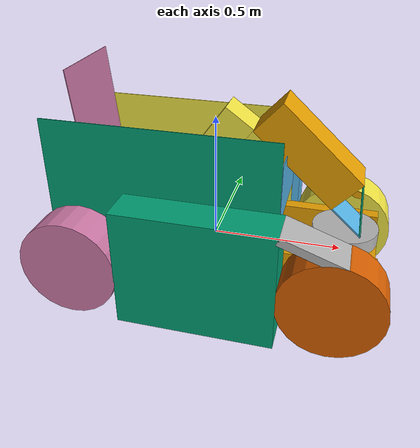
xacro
<?xml version="1.0"?>
<robot name="excavator" xmlns:xacro="http://www.ros.org/wiki/xacro">
  <!-- Top-level robot description -->
  <xacro:include filename="model_constants.xacro"/>
  <xacro:include filename="model_base.xacro"/>
  <xacro:include filename="model_arm.xacro"/>
  <gazebo>
    <plugin name="gazebo_ros_control" filename="libgazebo_ros_control.so">
      <robotNamespace>/</robotNamespace>
    </plugin>
  </gazebo>
</robot>

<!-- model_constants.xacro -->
<!--NOTE must match the constants in the control code header in utilities-->
<robot name="excavator" xmlns:xacro="http://www.ros.org/wiki/xacro">
  <!-- Shared model level constants -->
  <!-- Inches to meters conversion -->
  <xacro:property name="itom" value="0.0254" />
  <!-- Degrees to radians conversion -->
  <xacro:property name="dtor" value="${pi/180}" />
  <xacro:property name="sqrt2" value="1.41421" />

  <!-- Drivebase parameters -->
  <xacro:property name="base_mass" value="${25.0}"/>

  <xacro:property name="base_length" value="${50*itom}" />

  <xacro:property name="tube_width" value="${2*itom}" />
  <xacro:property name="drivebase_beam_width" value="${11.5*itom}" />
  <xacro:property name="drivebase_front_beam_height" value="${4*itom}" />
  <xacro:property name="drivebase_total_height" value="${6*itom}" />

  <!-- Drivetrain parameters -->
  <xacro:property name="tred_left_mass" value="${30.0}" />
  <xacro:property name="tred_right_mass" value="${30.0}" />
  <xacro:property name="tread_end_radius" value="${(15.5/2)*itom}" />
  <xacro:property name="tread_mid_height" value="${19*itom}" />
  <xacro:property name="tread_mid_length" value="${24*itom}" />
  <xacro:property name="tread_width" value="${6*itom}" />
  <xacro:property name="tread_spacing" value="${16*itom}" />
  <xacro:property name="intertread_length" value="${39*itom}" />
  <xacro:property name="tread_slope_length" value="${11*itom}" />

  <!-- Bin parameters -->
  <!-- Length of top of bin, length of bottom is 13.86 -->
  <!-- Using the bigger size as a box instead of making complex angled shape -->
  <xacro:property name="bin_mass" value="${10.0}" />
  <xacro:property name="bin_length" value="${36*itom}" />
  <xacro:property name="bin_width" value="${13.5*itom}" />
  <xacro:property name="bin_height" value="${16*itom}" />
  <xacro:property name="bin_back_height" value="${9*itom}" />
  <xacro:property name="bin_back_offset" value="${6.5*itom}" />

  <!-- Turntable parameters -->
  <xacro:property name="turntable_mass" value="${25.0}"/>
  <xacro:property name="turntable_radius" value="${4.92*itom}" />
  <!-- 1" in model plus undefined height for mounting and extra components -->
  <!-- Rounded to 2" for now -->
  <xacro:property name="turntable_height" value="${2.25*itom}" />

  <!-- Lower arm parameters -->
  <xacro:property name="lower_arm_mass" value="${28.0}"/>
  <xacro:property name="lower_arm_length" value="${22*itom}" />
  <xacro:property name="lower_arm_primary_length" value="${16*itom}" />
  <xacro:property name="lower_arm_width" value="${6*itom}" />
  <xacro:property name="lower_arm_height" value="${6*itom}" />
  <xacro:property name="lower_arm_min" value="0.104" />
  <xacro:property name="lower_arm_max" value="1.55" />

  <!-- Upper arm parameters -->
  <xacro:property name="upper_arm_mass" value="${10.0}"/>
  <xacro:property name="upper_arm_length" value="${20*itom}" />
  <xacro:property name="upper_arm_width" value="${4.75*itom}" />
  <xacro:property name="upper_arm_height" value="${5*itom}" />
  <xacro:property name="upper_arm_min" value="0.98"/>
  <xacro:property name="upper_arm_max" value="2.4"/>

  <!-- Scoop parameters -->
  <xacro:property name="scoop_mass" value="${5.0}"/>
  <xacro:property name="scoop_width" value="${8.5*itom}" />
  <xacro:property name="scoop_length" value="${12*itom}" />
  <xacro:property name="scoop_diameter" value="${12.5*itom}" />
  <xacro:property name="scoop_min" value="-1.16614" />
  <xacro:property name="scoop_max" value="1.62" />
</robot>

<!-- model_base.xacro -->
<robot xmlns:xacro="http://www.ros.org/wiki/xacro" name="excavator">
  <!-- CHASSIS -->
  <link name="base_link" >
    <visual>
      <geometry>
        <box size="${base_length} ${tube_width} ${drivebase_total_height}"/>
      </geometry>
      <origin xyz="0 ${drivebase_beam_width / 2 + tube_width / 2} 0" />
    </visual>

    <visual>
      <geometry>
        <box size="${base_length} ${tube_width} ${drivebase_total_height}"/>
      </geometry>
      <origin xyz="0 ${-drivebase_beam_width / 2 - tube_width / 2} 0" />
    </visual>

    <!-- Front beam -->
    <visual>
      <geometry>
        <box size="${tube_width} ${drivebase_beam_width} ${drivebase_front_beam_height}"/>
      </geometry>
      <origin xyz="${base_length / 2 - tube_width / 2} 0 ${drivebase_front_beam_height / 2 - drivebase_total_height / 2}" />
    </visual>

    <!-- Rear beam -->
    <visual>
      <geometry>
        <box size="${tube_width} ${drivebase_beam_width} ${drivebase_total_height}"/>
      </geometry>
      <origin xyz="${tube_width / 2 - base_length / 2} 0 0" />
    </visual>

    <collision>
      <geometry>
        <box size="${base_length} ${tube_width} ${drivebase_total_height}"/>
      </geometry>
      <origin xyz="0 ${drivebase_beam_width / 2 + tube_width / 2} 0" />
    </collision>

    <collision>
      <geometry>
        <box size="${base_length} ${tube_width} ${drivebase_total_height}"/>
      </geometry>
      <origin xyz="0 ${-drivebase_beam_width / 2 - tube_width / 2} 0" />
    </collision>

    <!-- Front beam -->
    <collision>
      <geometry>
        <box size="${tube_width} ${drivebase_beam_width} ${drivebase_front_beam_height}"/>
      </geometry>
      <origin xyz="${base_length / 2 - tube_width / 2} 0 ${drivebase_front_beam_height / 2 - drivebase_total_height / 2}" />
    </collision>

    <!-- Rear beam -->
    <collision>
      <geometry>
        <box size="${tube_width} ${drivebase_beam_width} ${drivebase_total_height}"/>
      </geometry>
      <origin xyz="${tube_width / 2 - base_length / 2} 0 0" />
    </collision>

    <!-- test -->
    <inertial>
      <mass value="1.0" />
      <inertia ixx="1.0" ixy="0.0" ixz="0.0" iyy="1.0" iyz="0.0" izz="1.0"/>
    </inertial>

  </link>

  <!-- DRIVEBASE -->
  <!-- A general tread huge block: may be refined later for slightly better operational motion -->
  <link name="tread_left_link">
    <visual>
      <geometry>
        <box size="${tread_mid_length} ${tread_width} ${tread_mid_height}"/>
      </geometry>
    </visual>
    <collision>
      <geometry>
        <box size="${tread_mid_length} ${tread_width} ${tread_mid_height}"/>
      </geometry>
    </collision>
    <!-- test -->
    <inertial>
      <mass value="1.0" />
      <inertia ixx="1.0" ixy="0.0" ixz="0.0" iyy="1.0" iyz="0.0" izz="1.0"/>
    </inertial>
  </link>

  <joint name="left_tread_joint" type="fixed">
    <parent link="base_link" />
    <child link="tread_left_link" />
    <origin xyz="0 ${tread_spacing / 2 + tread_width / 2} 0" />
  </joint>

  <link name="tread_right_link">
    <visual>
      <geometry>
        <box size="${tread_mid_length} ${tread_width} ${tread_mid_height}"/>
      </geometry>
    </visual>
    <collision>
      <geometry>
        <box size="${tread_mid_length} ${tread_width} ${tread_mid_height}"/>
      </geometry>
    </collision>
    <!-- test -->
    <inertial>
      <mass value="1.0" />
      <inertia ixx="1.0" ixy="0.0" ixz="0.0" iyy="1.0" iyz="0.0" izz="1.0"/>
    </inertial>
  </link>

  <joint name="right_tread_joint" type="fixed">
    <parent link="base_link" />
    <child link="tread_right_link" />
    <origin xyz="0 ${-tread_spacing / 2 - tread_width / 2} 0" />
  </joint>

  <link name="tread_left_front_link">
    <visual>
      <geometry>
        <cylinder radius="${tread_end_radius}" length="${tread_width}" />
      </geometry>
      <origin rpy="${pi/2} 0.0 0.0" />
    </visual>
    <collision>
      <geometry>
        <cylinder radius="${tread_end_radius}" length="${tread_width}" />
      </geometry>
      <origin rpy="${pi/2} 0.0 0.0" />
    </collision>
    <!-- test -->
    <inertial>
      <mass value="1.0" />
      <inertia ixx="1.0" ixy="0.0" ixz="0.0" iyy="1.0" iyz="0.0" izz="1.0"/>
    </inertial>
  </link>

  <joint name="tread_left_front_joint" type="fixed">
    <parent link="tread_left_link" />
    <child link="tread_left_front_link" />
    <origin xyz="${intertread_length / 2} 0 ${-1.38*itom}" />
  </joint>

  <link name="tread_left_rear_link">
    <visual>
      <geometry>
        <cylinder radius="${tread_end_radius}" length="${tread_width}" />
      </geometry>
      <origin rpy="${pi/2} 0.0 0.0" />
    </visual>
    <collision>
      <geometry>
        <cylinder radius="${tread_end_radius}" length="${tread_width}" />
      </geometry>
      <origin rpy="${pi/2} 0.0 0.0" />
    </collision>
    <!-- test -->
    <inertial>
      <mass value="1.0" />
      <inertia ixx="1.0" ixy="0.0" ixz="0.0" iyy="1.0" iyz="0.0" izz="1.0"/>
    </inertial>
  </link>

  <joint name="tread_left_rear_joint" type="fixed">
    <parent link="tread_left_link" />
    <child link="tread_left_rear_link" />
    <origin xyz="${-intertread_length / 2} 0 ${-1.38*itom}" />
  </joint>

  <link name="tread_right_front_link">
    <visual>
      <geometry>
        <cylinder radius="${tread_end_radius}" length="${tread_width}" />
      </geometry>
      <origin rpy="${pi/2} 0.0 0.0" />
    </visual>
    <collision>
      <geometry>
        <cylinder radius="${tread_end_radius}" length="${tread_width}" />
      </geometry>
      <origin rpy="${pi/2} 0.0 0.0" />
    </collision>
    <!-- test -->
    <inertial>
      <mass value="1.0" />
      <inertia ixx="1.0" ixy="0.0" ixz="0.0" iyy="1.0" iyz="0.0" izz="1.0"/>
    </inertial>
  </link>

  <joint name="tread_right_front_joint" type="fixed">
    <parent link="tread_right_link" />
    <child link="tread_right_front_link" />
    <origin xyz="${intertread_length / 2} 0 ${-1.38*itom}" />
  </joint>

  <link name="tread_right_rear_link">
    <visual>
      <geometry>
        <cylinder radius="${tread_end_radius}" length="${tread_width}" />
      </geometry>
      <origin rpy="${pi/2} 0.0 0.0" />
    </visual>
    <collision>
      <geometry>
        <cylinder radius="${tread_end_radius}" length="${tread_width}" />
      </geometry>
      <origin rpy="${pi/2} 0.0 0.0" />
    </collision>
    <!-- test -->
    <inertial>
      <mass value="1.0" />
      <inertia ixx="1.0" ixy="0.0" ixz="0.0" iyy="1.0" iyz="0.0" izz="1.0"/>
    </inertial>
  </link>

  <joint name="tread_right_rear_joint" type="fixed">
    <parent link="tread_right_link" />
    <child link="tread_right_rear_link" />
    <origin xyz="${-intertread_length / 2} 0 ${-1.38*itom}" />
  </joint>

  <link name="front_right_slope_link">
    <visual>
      <geometry>
        <box size="${tread_slope_length} ${tread_width} ${1.25*itom}"/>
      </geometry>
      <origin xyz="${tread_slope_length/2} 0.0 ${-1.25/2*itom}" />
    </visual>
    <collision>
      <geometry>
        <box size="${tread_slope_length} ${tread_width} ${1.25*itom}"/>
      </geometry>
      <origin xyz="${tread_slope_length/2} 0.0 ${-1.25/2*itom}" />
    </collision>
    <!-- test -->
    <inertial>
      <mass value="1.0" />
      <inertia ixx="1.0" ixy="0.0" ixz="0.0" iyy="1.0" iyz="0.0" izz="1.0"/>
    </inertial>
  </link>

  <joint name="front_right_slope_joint" type="fixed">
    <parent link="tread_right_link" />
    <child link="front_right_slope_link" />
    <origin xyz="${tread_mid_length/2} 0.0 ${tread_mid_height/2}" rpy="0.0 ${(180-160)*dtor} 0.0" />
  </joint>

  <link name="front_left_slope_link">
    <visual>
      <geometry>
        <box size="${tread_slope_length} ${tread_width} ${1.25*itom}"/>
      </geometry>
      <origin xyz="${tread_slope_length/2} 0.0 ${-1.25/2*itom}" />
    </visual>
    <collision>
      <geometry>
        <box size="${tread_slope_length} ${tread_width} ${1.25*itom}"/>
      </geometry>
      <origin xyz="${tread_slope_length/2} 0.0 ${-1.25/2*itom}" />
    </collision>
    <!-- test -->
    <inertial>
      <mass value="1.0" />
      <inertia ixx="1.0" ixy="0.0" ixz="0.0" iyy="1.0" iyz="0.0" izz="1.0"/>
    </inertial>
  </link>

  <joint name="front_left_slope_joint" type="fixed">
    <parent link="tread_left_link" />
    <child link="front_left_slope_link" />
    <origin xyz="${tread_mid_length/2} 0.0 ${tread_mid_height/2}" rpy="0.0 ${(180-160)*dtor} 0.0" />
  </joint>

  <!-- BIN -->
  <link name="bin_back" >
    <visual>
      <geometry>
        <box size="${0.125*itom} ${bin_width} ${bin_back_height}" />
      </geometry>
      <origin xyz="${bin_length} 0 ${-bin_height/2 + bin_height - (9.88 * itom) + (0.5*itom)}" />
    </visual>
    <collision>
      <geometry>
        <box size="${0.125*itom} ${bin_width} ${bin_height}" />
      </geometry>
      <origin xyz="${bin_length} 0 ${-bin_height/2 + bin_height - (9.88 * itom) + (0.5*itom)}" />
    </collision>
    <!-- test -->
    <inertial>
      <mass value="1.0" />
      <inertia ixx="1.0" ixy="0.0" ixz="0.0" iyy="1.0" iyz="0.0" izz="1.0"/>
    </inertial>
  </link>
  <joint name="bin_joint" type="revolute">
    <parent link="base_link" />
    <child link="bin_back" />
    <axis xyz="0 -1 0" />
    <origin xyz="${-base_length/2} 0 ${drivebase_total_height/2 + (9.88 * itom)}" />
    <limit effort="1.0" velocity="1.0" lower="0" upper="${pi/4}" />
  </joint>

  <link name="bin_right" >
    <visual>
      <geometry>
        <box size="${bin_length} ${0.125*itom} ${bin_height}"/>
      </geometry>
    </visual>
    <collision>
      <geometry>
        <box size="${bin_length} ${0.125*itom} ${bin_height}"/>
      </geometry>
    </collision>
    <!-- test -->
    <inertial>
      <mass value="1.0" />
      <inertia ixx="1.0" ixy="0.0" ixz="0.0" iyy="1.0" iyz="0.0" izz="1.0"/>
    </inertial>
  </link>
  <joint name="bin_right_joint" type="fixed">
    <parent link="bin_back" />
    <child link="bin_right" />
    <origin xyz="${bin_length/2} ${-bin_width/2} ${bin_height/2 - (9.88 * itom) + (0.5*itom)}" />
  </joint>

  <link name="bin_left" >
    <visual>
      <geometry>
        <box size="${bin_length} ${0.125*itom} ${bin_height}"/>
      </geometry>
    </visual>
    <collision>
      <geometry>
        <box size="${bin_length} ${0.125*itom} ${bin_height}"/>
      </geometry>
    </collision>
    <!-- test -->
    <inertial>
      <mass value="1.0" />
      <inertia ixx="1.0" ixy="0.0" ixz="0.0" iyy="1.0" iyz="0.0" izz="1.0"/>
    </inertial>
  </link>
  <joint name="bin_left_joint" type="fixed">
    <parent link="bin_back" />
    <child link="bin_left" />
    <origin xyz="${bin_length/2} ${bin_width/2} ${bin_height/2 - (9.88 * itom) + (0.5*itom)}" />
  </joint>

  <link name="bin_bottom" >
    <visual>
      <geometry>
        <box size="${13.84*itom} ${bin_width} ${0.125*itom}"/>
      </geometry>
    </visual>
    <collision>
      <geometry>
        <box size="${13.84*itom} ${bin_width} ${0.125*itom}"/>
      </geometry>
    </collision>
    <!-- test -->
    <inertial>
      <mass value="1.0" />
      <inertia ixx="1.0" ixy="0.0" ixz="0.0" iyy="1.0" iyz="0.0" izz="1.0"/>
    </inertial>
  </link>
  <joint name="bin_bottom_joint" type="fixed">
    <parent link="bin_back" />
    <child link="bin_bottom" />
    <origin xyz="${(13.84/2)*itom + (bin_length/2) - (sqrt2*itom)} 0 ${-(9.88 * itom) + (0.5 * itom)}" />
  </joint>

  <link name="bin_slope" >
    <visual>
      <geometry>
        <box size="${0.125*itom} ${bin_width} ${bin_height*sqrt2}" />
      </geometry>
      <origin xyz="0 0 ${-bin_height*sqrt2*0.5}"/>
    </visual>
    <collision>
      <geometry>
        <box size="${0.125*itom} ${bin_width} ${bin_height*sqrt2}" />
      </geometry>
      <origin xyz="0 0 ${-bin_height*sqrt2*0.5}"/>
    </collision>
    <!-- test -->
    <inertial>
      <mass value="1.0" />
      <inertia ixx="1.0" ixy="0.0" ixz="0.0" iyy="1.0" iyz="0.0" izz="1.0"/>
    </inertial>
  </link>
  <joint name="bin_slope_joint" type="fixed">
    <parent link="bin_back" />
    <child link="bin_slope" />
    <origin xyz="0 0 ${(12-9.88) * itom}" rpy="0 ${-pi/4} 0"/>
  </joint>
  <link name="bin_slope_2" >
    <visual>
      <geometry>
        <box size="${0.125*itom} ${bin_width} ${bin_height*sqrt2}" />
      </geometry>
      <origin xyz="${bin_back_offset} 0 0"/>
    </visual>
    <collision>
      <geometry>
        <box size="${0.125*itom} ${bin_width} ${bin_height*sqrt2}" />
      </geometry>
      <origin xyz=" ${bin_back_offset}  0 0"/>
    </collision>
    <!-- test -->
    <inertial>
      <mass value="1.0" />
      <inertia ixx="1.0" ixy="0.0" ixz="0.0" iyy="1.0" iyz="0.0" izz="1.0"/>
    </inertial>
  </link>
  <joint name="bin_slope_2_joint" type="fixed">
    <parent link="bin_back" />
    <child link="bin_slope_2" />
    <origin xyz="0  0 ${(12-9.88) * itom}" rpy="0 -0.105 0"/>
  </joint>
</robot>

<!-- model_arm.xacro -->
<robot xmlns:xacro="http://www.ros.org/wiki/xacro" name="excavator">

  <!--DIGGING ARM-->
  <link name="turntable">
    <visual>
      <geometry>
        <cylinder radius="${turntable_radius}" length="${turntable_height}" />
      </geometry>
      <origin xyz="0 0 ${turntable_height/2}" rpy="0 0 ${pi}" />
    </visual>
    <collision>
      <geometry>
        <cylinder radius="${turntable_radius}" length="${turntable_height}" />
      </geometry>
      <origin xyz="0 0 ${turntable_height/2}" rpy="0 0 ${pi}" />
    </collision>
    <!-- test -->
    <inertial>
      <mass value="1.0" />
      <inertia ixx="1.0" ixy="0.0" ixz="0.0" iyy="1.0" iyz="0.0" izz="1.0"/>
    </inertial>
  </link>

  <joint name="turntable_joint" type="revolute">
    <parent link="base_link" />
    <child link="turntable" />
    <origin xyz="${base_length/2-turntable_radius} 0 ${drivebase_front_beam_height/2}" rpy="0 0 ${pi}" />
    <axis xyz="0 0 1" />
    <limit effort="1.0" velocity="1.0" lower="${-1.1*pi}" upper="${1.1*pi}" />
  </joint>
  <transmission name="turntable_tran">
    <type>transmission_interface/SimpleTransmission</type>
    <joint name="turn_to_base">
      <hardwareInterface>hardware_interface/EffortJointInterface
      </hardwareInterface>
    </joint>
    <actuator name="turntable_motor">
      <hardwareInterface>hardware_interface/EffortJointInterface
      </hardwareInterface>
      <mechanicalReduction>1</mechanicalReduction>
      <motorTorqueConstant>1</motorTorqueConstant>
    </actuator>
  </transmission>

  <link name="lower_arm">
    <visual>
      <geometry>
        <box size="${lower_arm_height} ${lower_arm_width} ${lower_arm_primary_length}"/>
      </geometry>
      <origin xyz="${-lower_arm_height/2} 0 ${14*itom}" />
    </visual>
    <collision>
      <geometry>
        <box size="${lower_arm_height} ${lower_arm_width} ${lower_arm_primary_length}"/>
      </geometry>
      <origin xyz="${-lower_arm_height/2} 0 ${14*itom}" />
    </collision>
    <!-- test -->
    <inertial>
      <mass value="1.0" />
      <inertia ixx="1.0" ixy="0.0" ixz="0.0" iyy="1.0" iyz="0.0" izz="1.0"/>
    </inertial>
  </link>

  <joint name="lower_arm_joint" type="revolute">
    <parent link="turntable" />
    <child link="lower_arm" />
    <axis xyz="0 1 0" />
    <origin xyz="${-2.165*itom} 0 ${turntable_height}" />
    <limit effort="1.0" velocity="1.0" lower="${lower_arm_min}"
          upper="${lower_arm_max}" />
  </joint>
  <transmission name="lower_arm_tran">
    <type>transmission_interface/SimpleTransmission</type>
    <joint name="lower_to_turn">
      <hardwareInterface>hardware_interface/EffortJointInterface
      </hardwareInterface>
    </joint>
    <actuator name="lower_motor">
      <hardwareInterface>hardware_interface/EffortJointInterface
      </hardwareInterface>
      <mechanicalReduction>1</mechanicalReduction>
      <motorTorqueConstant>1</motorTorqueConstant>
    </actuator>
  </transmission>

  <link name="lower_arm_bottom">
    <visual>
      <geometry>
        <box size="${0.25*itom} ${lower_arm_width} ${lower_arm_length - lower_arm_primary_length}"/>
      </geometry>
    </visual>
    <collision>
      <geometry>
        <box size="${0.25*itom} ${lower_arm_width} ${lower_arm_length - lower_arm_primary_length}"/>
      </geometry>
    </collision>
    <!-- test -->
    <inertial>
      <mass value="1.0" />
      <inertia ixx="1.0" ixy="0.0" ixz="0.0" iyy="1.0" iyz="0.0" izz="1.0"/>
    </inertial>
  </link>
  <joint name="lower_arm_bottom_joint" type="fixed">
    <parent link="lower_arm" />
    <child link="lower_arm_bottom" />
    <origin xyz="${-0.125*itom} 0 ${(lower_arm_length - lower_arm_primary_length)/2}" />
  </joint>

  <link name="lower_arm_slope">
    <visual>
      <geometry>
        <box size="${0.25*itom} ${lower_arm_width} ${(lower_arm_length - lower_arm_primary_length) * sqrt2}"/>
      </geometry>
      <origin xyz="${0.125*itom} 0 ${-(lower_arm_length - lower_arm_primary_length) / 2 * sqrt2}" rpy="0 0 0" />
    </visual>
    <collision>
      <geometry>
        <box size="${0.25*itom} ${lower_arm_width} ${(lower_arm_length - lower_arm_primary_length) * sqrt2}"/>
      </geometry>
      <origin xyz="${0.125*itom} 0 ${-(lower_arm_length - lower_arm_primary_length) / 2 * sqrt2}" rpy="0 0 0" />
    </collision>
    <!-- test -->
    <inertial>
      <mass value="1.0" />
      <inertia ixx="1.0" ixy="0.0" ixz="0.0" iyy="1.0" iyz="0.0" izz="1.0"/>
    </inertial>
  </link>
  <joint name="lower_arm_slope_joint" type="fixed">
    <parent link="lower_arm" />
    <child link="lower_arm_slope" />
    <origin xyz="${-lower_arm_height} 0 ${(lower_arm_length - lower_arm_primary_length)}" rpy="0 ${-44*dtor} 0"/>
  </joint>

  <link name="upper_arm">
    <visual>
      <geometry>
        <box size="${upper_arm_height} ${upper_arm_width} ${upper_arm_length}"/>
      </geometry>
      <origin xyz="${-upper_arm_height/2} 0 ${upper_arm_length/2}" />
    </visual>
    <collision>
      <geometry>
        <box size="${upper_arm_height} ${upper_arm_width} ${upper_arm_length}"/>
      </geometry>
      <origin xyz="${-upper_arm_height/2} 0 ${upper_arm_length/2}" />
    </collision>
    <!-- test -->
    <inertial>
      <mass value="1.0" />
      <inertia ixx="1.0" ixy="0.0" ixz="0.0" iyy="1.0" iyz="0.0" izz="1.0"/>
    </inertial>
  </link>
  <joint name="upper_arm_joint" type="revolute">
    <parent link="lower_arm" />
    <child link="upper_arm" />
    <axis xyz="0 1 0" />
    <origin xyz="0 0 ${lower_arm_length}" />
    <limit effort="1.0" velocity="1.0" lower="${upper_arm_min}"
          upper="${upper_arm_max}" />
  </joint>
  <transmission name="upper_arm_tran">
    <type>transmission_interface/SimpleTransmission</type>
    <joint name="upper_to_lower">
      <hardwareInterface>hardware_interface/EffortJointInterface
      </hardwareInterface>
    </joint>
    <actuator name="upper_motor">
      <hardwareInterface>hardware_interface/EffortJointInterface
      </hardwareInterface>
      <mechanicalReduction>1</mechanicalReduction>
      <motorTorqueConstant>1</motorTorqueConstant>
    </actuator>
  </transmission>

  <link name="scoop">
    <visual>
      <geometry>
        <box size="${scoop_length} ${scoop_width} ${scoop_diameter/2}" />
      </geometry>
      <origin xyz="${scoop_length/2} 0 ${scoop_diameter/4}" />
    </visual>
    <collision>
      <geometry>
        <box size="${scoop_length} ${scoop_width} ${scoop_diameter/2}" />
      </geometry>
      <origin xyz="${scoop_length/2} 0 ${scoop_diameter/4}" />
    </collision>
    <!-- test -->
    <inertial>
      <mass value="1.0" />
      <inertia ixx="1.0" ixy="0.0" ixz="0.0" iyy="1.0" iyz="0.0" izz="1.0"/>
    </inertial>
  </link>
  <joint name="scoop_joint" type="revolute">
    <parent link="upper_arm" />
    <child link="scoop" />
    <origin xyz="${1.5*itom} 0 ${upper_arm_length - (0.875*itom)}" />
    <axis xyz="0 1 0" />
    <limit effort="1.0" velocity="1.0" lower="${scoop_min}"
          upper="${scoop_max}" />
  </joint>
  <transmission name="scoop_tran">
    <type>transmission_interface/SimpleTransmission</type>
    <joint name="end_to_arm">
      <hardwareInterface>hardware_interface/EffortJointInterface
      </hardwareInterface>
    </joint>
    <actuator name="end_motor">
      <hardwareInterface>hardware_interface/EffortJointInterface
      </hardwareInterface>
      <mechanicalReduction>1</mechanicalReduction>
      <motorTorqueConstant>1</motorTorqueConstant>
    </actuator>
  </transmission>
</robot>
